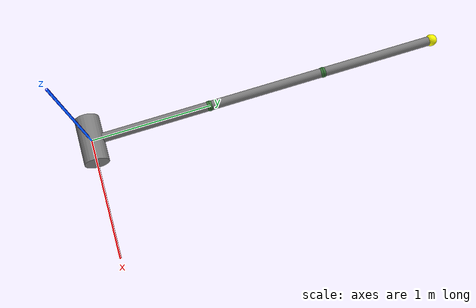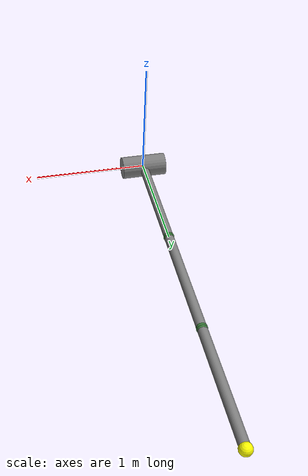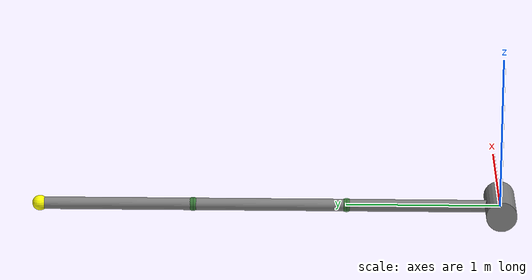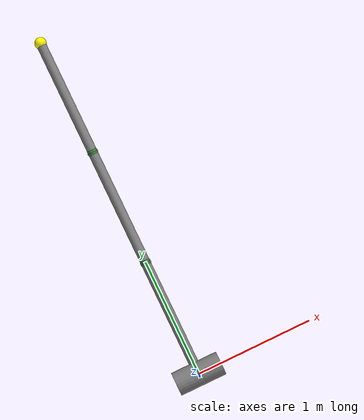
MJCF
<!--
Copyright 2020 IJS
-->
<mujoco model="robot_demo">
    <compiler angle="radian" />
    <size njmax="500" nconmax="100" />
    <option gravity="0 0 -9.810" />

    <visual>
        <headlight diffuse="0.7 0.7 0.7" />
    </visual>
    <default class="main">
        <joint limited="false" solimplimit="0.95 0.95 0.1" range="-100 100" damping="1000" />
        <geom contype="1" conaffinity="0" size="0.01 0 0" rgba="0.5 0.5 0.5 1" />
        <site size="0.005 0 0" rgba="0 0.5 0 0.5" />
        <general biastype="affine" gainprm="2000 0 0" biasprm="0 -2000 0" ctrllimited="true" ctrlrange="-3 3" />
    </default>
  <asset>
    <texture builtin="gradient" height="100" rgb1="1 1 1" rgb2="1 1 1" type="skybox" width="100"/>
  </asset>

  <worldbody>
    <site group="2" type="cylinder" pos="0.5 0 0" quat="0.70711 0 0.70711 0" size="0.01 0.5" rgba="1 0 0 1"/>
    <site group="2" type="cylinder" pos="0 0.5 0" quat="0.70711 0.70711 0 0" size="0.01 0.5" rgba="0 1 0 1"/>
    <site group="2" type="cylinder" pos="0 0 0.5" quat="1 0 0 0" size="0.01 0.5" rgba="0 0 1 1"/>

    <body name="Robot" mocap="true" pos="0 0 0" quat="1 0 0 0">
      <geom type="cylinder" fromto="-0.2 0 0 0.2 0 0" size="0.1"/>
      <body name="Link1" pos="0 0 0" >
        <joint name="joint1" type="hinge" pos="0 0 0" axis="1 0 0" range="-180 180"/>
        <geom type="cylinder" fromto="0 0 0 0 1 0" size="0.04"/>
        <site name="base" type="sphere"  pos="0 0 0" size="0.045"/>

        <body name="Link2" pos="0 1 0" >
          <joint name="joint2" type="hinge" pos="0 0 0" axis="1 0 0" range="-180 180"/>
          <geom type="cylinder" fromto="0 0 0 0 1 0" size="0.04"/>
          <site name="mid" type="sphere"  pos="0 0 0" size="0.045"/>

          <body name="Link3" pos="0 1 0" >
            <joint name="joint3" type="hinge" pos="0 0 0" axis="1 0 0" range="-180 180"/>
            <geom type="cylinder" fromto="0 0 0 0 1 0" size="0.04" />
            <site name="end" type="sphere"  pos="0 0 0" size="0.045"/>
            <body name="tool" pos="0 1 0" >
              <geom type="sphere" pos="0 0 0" size="0.05"  rgba="1 1 0 1"/>
              <site name="Tool" type="sphere"  pos="0 0 0" size="0.04"/>
            </body>
          </body>
        </body>
      </body>
    </body>
  </worldbody>

  <actuator>
    <general name="p1" joint="joint1" />
    <general name="p2" joint="joint2" />
    <general name="p3" joint="joint3" />
  </actuator>

  <sensor>
    <force name="Force" site="Tool" noise="0"/>
  </sensor>

</mujoco>
